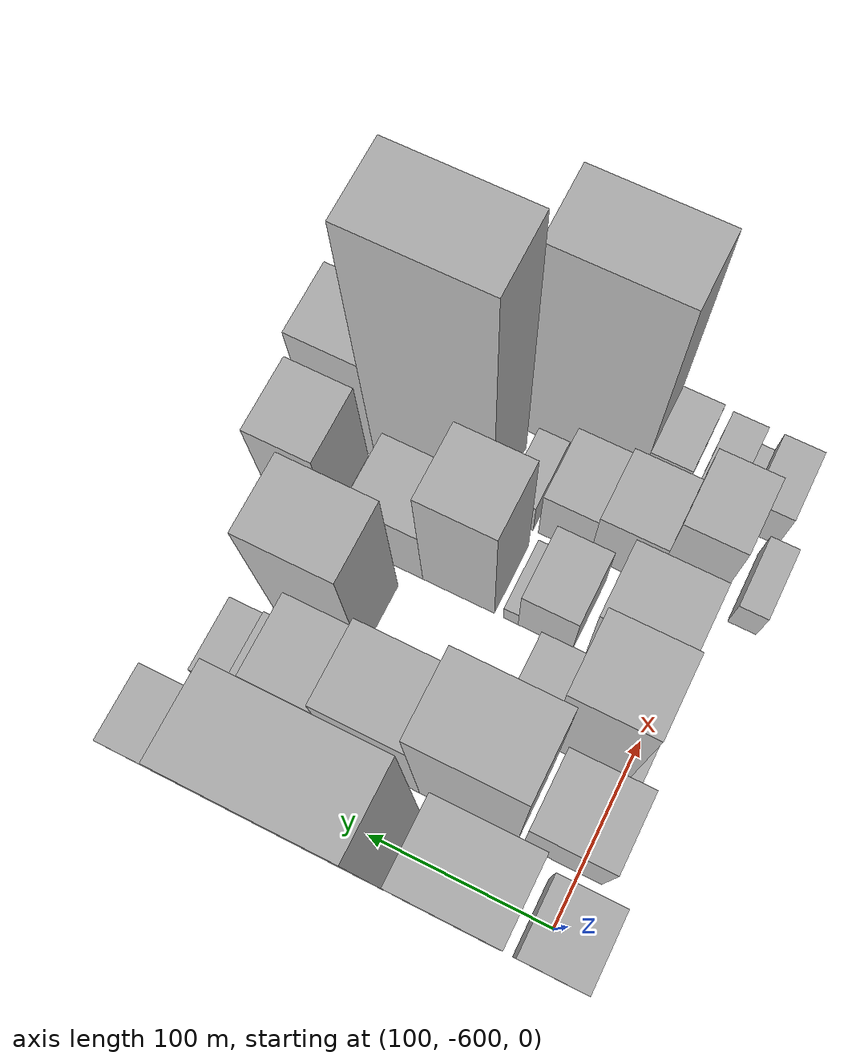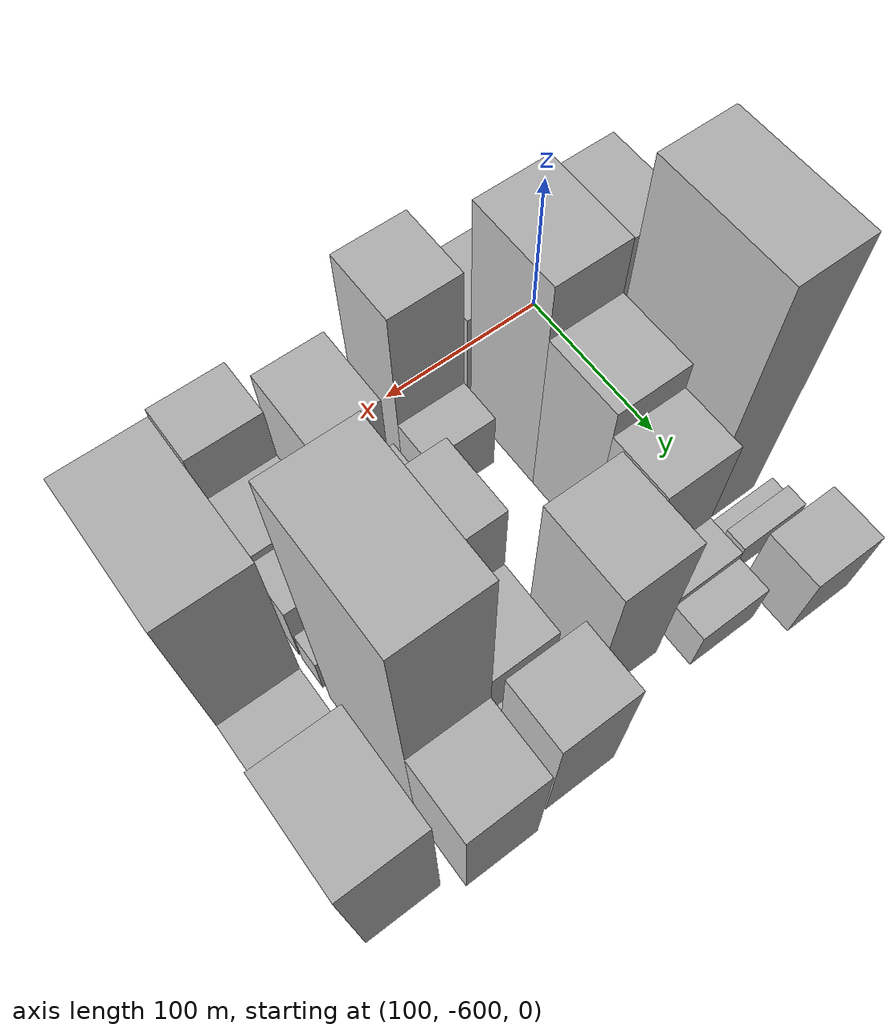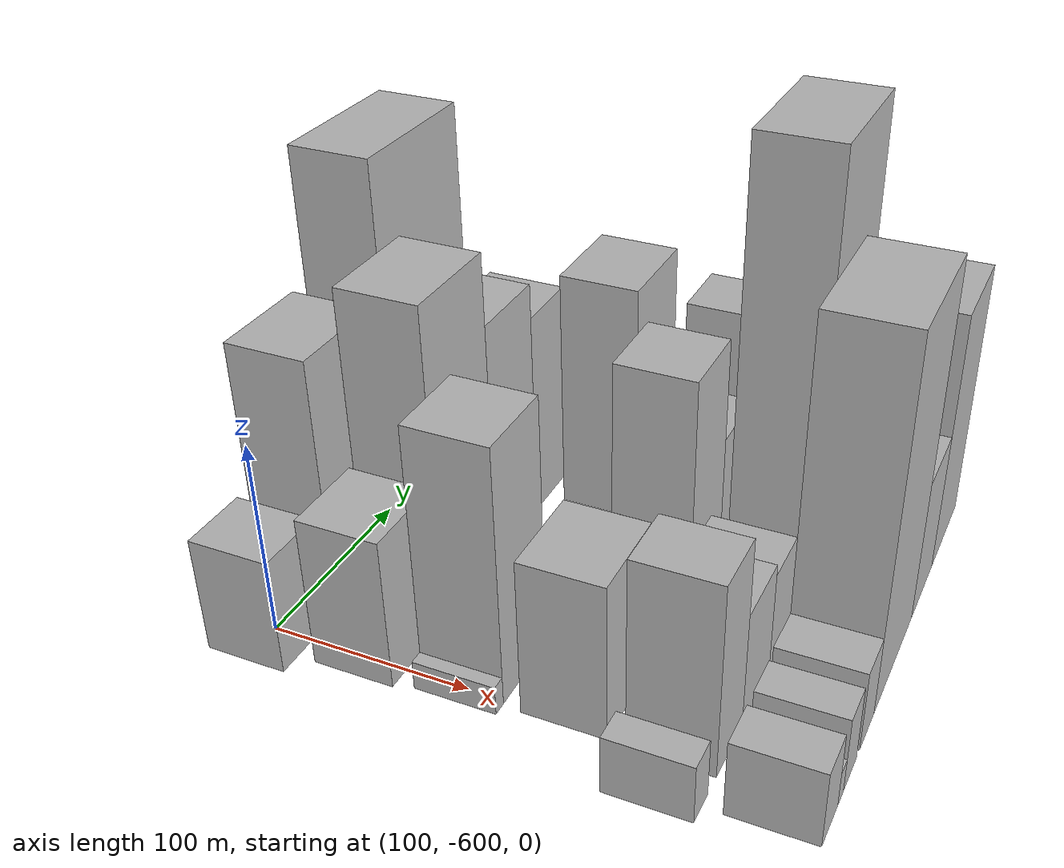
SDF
<sdf version="1.6">
 <world name="default">
  <model name="building_6">
   <static>1</static>
   <pose>100.0000 -605.4670 0 0.000000 0.000000 0.000000</pose>
   <link name="link">
    <pose>0 0 30.00 0 0 0</pose>
    <collision name="collision"><geometry><box><size>40.0000 35.0265 60.0000</size></box></geometry></collision>
    <visual name="visual">
     <cast_shadows>0</cast_shadows>
     <geometry><box><size>40.0000 35.0265 60.0000</size></box></geometry>
     <material>
      <script>
       <uri>model://HANNAS_wall/materials/scripts</uri>
       <uri>model://HANNAS_wall/materials/textures</uri>
       <name>vrc/HANNAS_wall</name>
      </script>
     </material>
    </visual>
   </link>
  </model>
  <model name="building_7">
   <static>1</static>
   <pose>100.0000 -554.4824 0 0.000000 0.000000 0.000000</pose>
   <link name="link">
    <pose>0 0 67.50 0 0 0</pose>
    <collision name="collision"><geometry><box><size>40.0000 50.9426 135.0000</size></box></geometry></collision>
    <visual name="visual">
     <cast_shadows>0</cast_shadows>
     <geometry><box><size>40.0000 50.9426 135.0000</size></box></geometry>
     <material>
      <script>
       <uri>model://HANNAS_wall/materials/scripts</uri>
       <uri>model://HANNAS_wall/materials/textures</uri>
       <name>vrc/HANNAS_wall</name>
      </script>
     </material>
    </visual>
   </link>
  </model>
  <model name="building_8">
   <static>1</static>
   <pose>100.0000 -481.4646 0 0.000000 0.000000 0.000000</pose>
   <link name="link">
    <pose>0 0 100.50 0 0 0</pose>
    <collision name="collision"><geometry><box><size>40.0000 75.0930 201.0000</size></box></geometry></collision>
    <visual name="visual">
     <cast_shadows>0</cast_shadows>
     <geometry><box><size>40.0000 75.0930 201.0000</size></box></geometry>
     <material>
      <script>
       <uri>model://HANNAS_wall/materials/scripts</uri>
       <uri>model://HANNAS_wall/materials/textures</uri>
       <name>vrc/HANNAS_wall</name>
      </script>
     </material>
    </visual>
   </link>
  </model>
  <model name="building_9">
   <static>1</static>
   <pose>100.0000 -432.3738 0 0.000000 0.000000 0.000000</pose>
   <link name="link">
    <pose>0 0 10.50 0 0 0</pose>
    <collision name="collision"><geometry><box><size>40.0000 9.0886 21.0000</size></box></geometry></collision>
    <visual name="visual">
     <cast_shadows>0</cast_shadows>
     <geometry><box><size>40.0000 9.0886 21.0000</size></box></geometry>
     <material>
      <script>
       <uri>model://HANNAS_wall/materials/scripts</uri>
       <uri>model://HANNAS_wall/materials/textures</uri>
       <name>vrc/HANNAS_wall</name>
      </script>
     </material>
    </visual>
   </link>
  </model>
  <model name="building_10">
   <static>1</static>
   <pose>100.0000 -421.5550 0 0.000000 0.000000 0.000000</pose>
   <link name="link">
    <pose>0 0 13.50 0 0 0</pose>
    <collision name="collision"><geometry><box><size>40.0000 12.5490 27.0000</size></box></geometry></collision>
    <visual name="visual">
     <cast_shadows>0</cast_shadows>
     <geometry><box><size>40.0000 12.5490 27.0000</size></box></geometry>
     <material>
      <script>
       <uri>model://HANNAS_wall/materials/scripts</uri>
       <uri>model://HANNAS_wall/materials/textures</uri>
       <name>vrc/HANNAS_wall</name>
      </script>
     </material>
    </visual>
   </link>
  </model>
  <model name="building_11">
   <static>1</static>
   <pose>100.0000 -392.2786 0 0.000000 0.000000 0.000000</pose>
   <link name="link">
    <pose>0 0 28.50 0 0 0</pose>
    <collision name="collision"><geometry><box><size>40.0000 32.0037 57.0000</size></box></geometry></collision>
    <visual name="visual">
     <cast_shadows>0</cast_shadows>
     <geometry><box><size>40.0000 32.0037 57.0000</size></box></geometry>
     <material>
      <script>
       <uri>model://HANNAS_wall/materials/scripts</uri>
       <uri>model://HANNAS_wall/materials/textures</uri>
       <name>vrc/HANNAS_wall</name>
      </script>
     </material>
    </visual>
   </link>
  </model>
  <model name="building_52">
   <static>1</static>
   <pose>149.0000 -590.7707 0 0.000000 0.000000 0.000000</pose>
   <link name="link">
    <pose>0 0 39.00 0 0 0</pose>
    <collision name="collision"><geometry><box><size>40.0000 42.2440 78.0000</size></box></geometry></collision>
    <visual name="visual">
     <cast_shadows>0</cast_shadows>
     <geometry><box><size>40.0000 42.2440 78.0000</size></box></geometry>
     <material>
      <script>
       <uri>model://HANNAS_wall/materials/scripts</uri>
       <uri>model://HANNAS_wall/materials/textures</uri>
       <name>vrc/HANNAS_wall</name>
      </script>
     </material>
    </visual>
   </link>
  </model>
  <model name="building_53">
   <static>1</static>
   <pose>149.0000 -540.1010 0 0.000000 0.000000 0.000000</pose>
   <link name="link">
    <pose>0 0 82.50 0 0 0</pose>
    <collision name="collision"><geometry><box><size>40.0000 53.0954 165.0000</size></box></geometry></collision>
    <visual name="visual">
     <cast_shadows>0</cast_shadows>
     <geometry><box><size>40.0000 53.0954 165.0000</size></box></geometry>
     <material>
      <script>
       <uri>model://HANNAS_wall/materials/scripts</uri>
       <uri>model://HANNAS_wall/materials/textures</uri>
       <name>vrc/HANNAS_wall</name>
      </script>
     </material>
    </visual>
   </link>
  </model>
  <model name="building_54">
   <static>1</static>
   <pose>149.0000 -491.4233 0 0.000000 0.000000 0.000000</pose>
   <link name="link">
    <pose>0 0 64.50 0 0 0</pose>
    <collision name="collision"><geometry><box><size>40.0000 44.2600 129.0000</size></box></geometry></collision>
    <visual name="visual">
     <cast_shadows>0</cast_shadows>
     <geometry><box><size>40.0000 44.2600 129.0000</size></box></geometry>
     <material>
      <script>
       <uri>model://HANNAS_wall/materials/scripts</uri>
       <uri>model://HANNAS_wall/materials/textures</uri>
       <name>vrc/HANNAS_wall</name>
      </script>
     </material>
    </visual>
   </link>
  </model>
  <model name="building_55">
   <static>1</static>
   <pose>149.0000 -451.5261 0 0.000000 0.000000 0.000000</pose>
   <link name="link">
    <pose>0 0 55.50 0 0 0</pose>
    <collision name="collision"><geometry><box><size>40.0000 35.5344 111.0000</size></box></geometry></collision>
    <visual name="visual">
     <cast_shadows>0</cast_shadows>
     <geometry><box><size>40.0000 35.5344 111.0000</size></box></geometry>
     <material>
      <script>
       <uri>model://HANNAS_wall/materials/scripts</uri>
       <uri>model://HANNAS_wall/materials/textures</uri>
       <name>vrc/HANNAS_wall</name>
      </script>
     </material>
    </visual>
   </link>
  </model>
  <model name="building_56">
   <static>1</static>
   <pose>149.0000 -422.6835 0 0.000000 0.000000 0.000000</pose>
   <link name="link">
    <pose>0 0 21.00 0 0 0</pose>
    <collision name="collision"><geometry><box><size>40.0000 22.1510 42.0000</size></box></geometry></collision>
    <visual name="visual">
     <cast_shadows>0</cast_shadows>
     <geometry><box><size>40.0000 22.1510 42.0000</size></box></geometry>
     <material>
      <script>
       <uri>model://HANNAS_wall/materials/scripts</uri>
       <uri>model://HANNAS_wall/materials/textures</uri>
       <name>vrc/HANNAS_wall</name>
      </script>
     </material>
    </visual>
   </link>
  </model>
  <model name="building_57">
   <static>1</static>
   <pose>149.0000 -401.6400 0 0.000000 0.000000 0.000000</pose>
   <link name="link">
    <pose>0 0 18.00 0 0 0</pose>
    <collision name="collision"><geometry><box><size>40.0000 19.9360 36.0000</size></box></geometry></collision>
    <visual name="visual">
     <cast_shadows>0</cast_shadows>
     <geometry><box><size>40.0000 19.9360 36.0000</size></box></geometry>
     <material>
      <script>
       <uri>model://HANNAS_wall/materials/scripts</uri>
       <uri>model://HANNAS_wall/materials/textures</uri>
       <name>vrc/HANNAS_wall</name>
      </script>
     </material>
    </visual>
   </link>
  </model>
  <model name="building_102">
   <static>1</static>
   <pose>198.0000 -605.2916 0 0.000000 0.000000 0.000000</pose>
   <link name="link">
    <pose>0 0 7.50 0 0 0</pose>
    <collision name="collision"><geometry><box><size>40.0000 6.8563 15.0000</size></box></geometry></collision>
    <visual name="visual">
     <cast_shadows>0</cast_shadows>
     <geometry><box><size>40.0000 6.8563 15.0000</size></box></geometry>
     <material>
      <script>
       <uri>model://HANNAS_wall/materials/scripts</uri>
       <uri>model://HANNAS_wall/materials/textures</uri>
       <name>vrc/HANNAS_wall</name>
      </script>
     </material>
    </visual>
   </link>
  </model>
  <model name="building_103">
   <static>1</static>
   <pose>198.0000 -580.9486 0 0.000000 0.000000 0.000000</pose>
   <link name="link">
    <pose>0 0 66.00 0 0 0</pose>
    <collision name="collision"><geometry><box><size>40.0000 41.8298 132.0000</size></box></geometry></collision>
    <visual name="visual">
     <cast_shadows>0</cast_shadows>
     <geometry><box><size>40.0000 41.8298 132.0000</size></box></geometry>
     <material>
      <script>
       <uri>model://HANNAS_wall/materials/scripts</uri>
       <uri>model://HANNAS_wall/materials/textures</uri>
       <name>vrc/HANNAS_wall</name>
      </script>
     </material>
    </visual>
   </link>
  </model>
  <model name="building_104">
   <static>1</static>
   <pose>198.0000 -547.4673 0 0.000000 0.000000 0.000000</pose>
   <link name="link">
    <pose>0 0 22.50 0 0 0</pose>
    <collision name="collision"><geometry><box><size>40.0000 25.1329 45.0000</size></box></geometry></collision>
    <visual name="visual">
     <cast_shadows>0</cast_shadows>
     <geometry><box><size>40.0000 25.1329 45.0000</size></box></geometry>
     <material>
      <script>
       <uri>model://HANNAS_wall/materials/scripts</uri>
       <uri>model://HANNAS_wall/materials/textures</uri>
       <name>vrc/HANNAS_wall</name>
      </script>
     </material>
    </visual>
   </link>
  </model>
  <model name="building_105">
   <static>1</static>
   <pose>198.0000 -430.9025 0 0.000000 0.000000 0.000000</pose>
   <link name="link">
    <pose>0 0 64.50 0 0 0</pose>
    <collision name="collision"><geometry><box><size>40.0000 49.3322 129.0000</size></box></geometry></collision>
    <visual name="visual">
     <cast_shadows>0</cast_shadows>
     <geometry><box><size>40.0000 49.3322 129.0000</size></box></geometry>
     <material>
      <script>
       <uri>model://HANNAS_wall/materials/scripts</uri>
       <uri>model://HANNAS_wall/materials/textures</uri>
       <name>vrc/HANNAS_wall</name>
      </script>
     </material>
    </visual>
   </link>
  </model>
  <model name="building_149">
   <static>1</static>
   <pose>247.0000 -580.2338 0 0.000000 0.000000 0.000000</pose>
   <link name="link">
    <pose>0 0 40.50 0 0 0</pose>
    <collision name="collision"><geometry><box><size>40.0000 46.2314 81.0000</size></box></geometry></collision>
    <visual name="visual">
     <cast_shadows>0</cast_shadows>
     <geometry><box><size>40.0000 46.2314 81.0000</size></box></geometry>
     <material>
      <script>
       <uri>model://HANNAS_wall/materials/scripts</uri>
       <uri>model://HANNAS_wall/materials/textures</uri>
       <name>vrc/HANNAS_wall</name>
      </script>
     </material>
    </visual>
   </link>
  </model>
  <model name="building_150">
   <static>1</static>
   <pose>247.0000 -534.8901 0 0.000000 0.000000 0.000000</pose>
   <link name="link">
    <pose>0 0 25.50 0 0 0</pose>
    <collision name="collision"><geometry><box><size>40.0000 30.4558 51.0000</size></box></geometry></collision>
    <visual name="visual">
     <cast_shadows>0</cast_shadows>
     <geometry><box><size>40.0000 30.4558 51.0000</size></box></geometry>
     <material>
      <script>
       <uri>model://HANNAS_wall/materials/scripts</uri>
       <uri>model://HANNAS_wall/materials/textures</uri>
       <name>vrc/HANNAS_wall</name>
      </script>
     </material>
    </visual>
   </link>
  </model>
  <model name="building_151">
   <static>1</static>
   <pose>247.0000 -515.4645 0 0.000000 0.000000 0.000000</pose>
   <link name="link">
    <pose>0 0 9.00 0 0 0</pose>
    <collision name="collision"><geometry><box><size>40.0000 8.3954 18.0000</size></box></geometry></collision>
    <visual name="visual">
     <cast_shadows>0</cast_shadows>
     <geometry><box><size>40.0000 8.3954 18.0000</size></box></geometry>
     <material>
      <script>
       <uri>model://HANNAS_wall/materials/scripts</uri>
       <uri>model://HANNAS_wall/materials/textures</uri>
       <name>vrc/HANNAS_wall</name>
      </script>
     </material>
    </visual>
   </link>
  </model>
  <model name="building_152">
   <static>1</static>
   <pose>247.0000 -485.7428 0 0.000000 0.000000 0.000000</pose>
   <link name="link">
    <pose>0 0 60.00 0 0 0</pose>
    <collision name="collision"><geometry><box><size>40.0000 41.0480 120.0000</size></box></geometry></collision>
    <visual name="visual">
     <cast_shadows>0</cast_shadows>
     <geometry><box><size>40.0000 41.0480 120.0000</size></box></geometry>
     <material>
      <script>
       <uri>model://HANNAS_wall/materials/scripts</uri>
       <uri>model://HANNAS_wall/materials/textures</uri>
       <name>vrc/HANNAS_wall</name>
      </script>
     </material>
    </visual>
   </link>
  </model>
  <model name="building_153">
   <static>1</static>
   <pose>247.0000 -445.6171 0 0.000000 0.000000 0.000000</pose>
   <link name="link">
    <pose>0 0 33.00 0 0 0</pose>
    <collision name="collision"><geometry><box><size>40.0000 39.2034 66.0000</size></box></geometry></collision>
    <visual name="visual">
     <cast_shadows>0</cast_shadows>
     <geometry><box><size>40.0000 39.2034 66.0000</size></box></geometry>
     <material>
      <script>
       <uri>model://HANNAS_wall/materials/scripts</uri>
       <uri>model://HANNAS_wall/materials/textures</uri>
       <name>vrc/HANNAS_wall</name>
      </script>
     </material>
    </visual>
   </link>
  </model>
  <model name="building_154">
   <static>1</static>
   <pose>247.0000 -420.3716 0 0.000000 0.000000 0.000000</pose>
   <link name="link">
    <pose>0 0 12.00 0 0 0</pose>
    <collision name="collision"><geometry><box><size>40.0000 11.2876 24.0000</size></box></geometry></collision>
    <visual name="visual">
     <cast_shadows>0</cast_shadows>
     <geometry><box><size>40.0000 11.2876 24.0000</size></box></geometry>
     <material>
      <script>
       <uri>model://HANNAS_wall/materials/scripts</uri>
       <uri>model://HANNAS_wall/materials/textures</uri>
       <name>vrc/HANNAS_wall</name>
      </script>
     </material>
    </visual>
   </link>
  </model>
  <model name="building_155">
   <static>1</static>
   <pose>247.0000 -397.0033 0 0.000000 0.000000 0.000000</pose>
   <link name="link">
    <pose>0 0 52.50 0 0 0</pose>
    <collision name="collision"><geometry><box><size>40.0000 35.4490 105.0000</size></box></geometry></collision>
    <visual name="visual">
     <cast_shadows>0</cast_shadows>
     <geometry><box><size>40.0000 35.4490 105.0000</size></box></geometry>
     <material>
      <script>
       <uri>model://HANNAS_wall/materials/scripts</uri>
       <uri>model://HANNAS_wall/materials/textures</uri>
       <name>vrc/HANNAS_wall</name>
      </script>
     </material>
    </visual>
   </link>
  </model>
  <model name="building_204">
   <static>1</static>
   <pose>296.0000 -622.5141 0 0.000000 0.000000 0.000000</pose>
   <link name="link">
    <pose>0 0 15.00 0 0 0</pose>
    <collision name="collision"><geometry><box><size>40.0000 15.7759 30.0000</size></box></geometry></collision>
    <visual name="visual">
     <cast_shadows>0</cast_shadows>
     <geometry><box><size>40.0000 15.7759 30.0000</size></box></geometry>
     <material>
      <script>
       <uri>model://HANNAS_wall/materials/scripts</uri>
       <uri>model://HANNAS_wall/materials/textures</uri>
       <name>vrc/HANNAS_wall</name>
      </script>
     </material>
    </visual>
   </link>
  </model>
  <model name="building_205">
   <static>1</static>
   <pose>296.0000 -588.7622 0 0.000000 0.000000 0.000000</pose>
   <link name="link">
    <pose>0 0 49.50 0 0 0</pose>
    <collision name="collision"><geometry><box><size>40.0000 31.7278 99.0000</size></box></geometry></collision>
    <visual name="visual">
     <cast_shadows>0</cast_shadows>
     <geometry><box><size>40.0000 31.7278 99.0000</size></box></geometry>
     <material>
      <script>
       <uri>model://HANNAS_wall/materials/scripts</uri>
       <uri>model://HANNAS_wall/materials/textures</uri>
       <name>vrc/HANNAS_wall</name>
      </script>
     </material>
    </visual>
   </link>
  </model>
  <model name="building_206">
   <static>1</static>
   <pose>296.0000 -554.9461 0 0.000000 0.000000 0.000000</pose>
   <link name="link">
    <pose>0 0 30.00 0 0 0</pose>
    <collision name="collision"><geometry><box><size>40.0000 35.9045 60.0000</size></box></geometry></collision>
    <visual name="visual">
     <cast_shadows>0</cast_shadows>
     <geometry><box><size>40.0000 35.9045 60.0000</size></box></geometry>
     <material>
      <script>
       <uri>model://HANNAS_wall/materials/scripts</uri>
       <uri>model://HANNAS_wall/materials/textures</uri>
       <name>vrc/HANNAS_wall</name>
      </script>
     </material>
    </visual>
   </link>
  </model>
  <model name="building_207">
   <static>1</static>
   <pose>296.0000 -522.3073 0 0.000000 0.000000 0.000000</pose>
   <link name="link">
    <pose>0 0 27.00 0 0 0</pose>
    <collision name="collision"><geometry><box><size>40.0000 29.3731 54.0000</size></box></geometry></collision>
    <visual name="visual">
     <cast_shadows>0</cast_shadows>
     <geometry><box><size>40.0000 29.3731 54.0000</size></box></geometry>
     <material>
      <script>
       <uri>model://HANNAS_wall/materials/scripts</uri>
       <uri>model://HANNAS_wall/materials/textures</uri>
       <name>vrc/HANNAS_wall</name>
      </script>
     </material>
    </visual>
   </link>
  </model>
  <model name="building_208">
   <static>1</static>
   <pose>296.0000 -495.9714 0 0.000000 0.000000 0.000000</pose>
   <link name="link">
    <pose>0 0 16.50 0 0 0</pose>
    <collision name="collision"><geometry><box><size>40.0000 17.2987 33.0000</size></box></geometry></collision>
    <visual name="visual">
     <cast_shadows>0</cast_shadows>
     <geometry><box><size>40.0000 17.2987 33.0000</size></box></geometry>
     <material>
      <script>
       <uri>model://HANNAS_wall/materials/scripts</uri>
       <uri>model://HANNAS_wall/materials/textures</uri>
       <name>vrc/HANNAS_wall</name>
      </script>
     </material>
    </visual>
   </link>
  </model>
  <model name="building_209">
   <static>1</static>
   <pose>296.0000 -446.6043 0 0.000000 0.000000 0.000000</pose>
   <link name="link">
    <pose>0 0 112.50 0 0 0</pose>
    <collision name="collision"><geometry><box><size>40.0000 69.4356 225.0000</size></box></geometry></collision>
    <visual name="visual">
     <cast_shadows>0</cast_shadows>
     <geometry><box><size>40.0000 69.4356 225.0000</size></box></geometry>
     <material>
      <script>
       <uri>model://HANNAS_wall/materials/scripts</uri>
       <uri>model://HANNAS_wall/materials/textures</uri>
       <name>vrc/HANNAS_wall</name>
      </script>
     </material>
    </visual>
   </link>
  </model>
  <model name="building_210">
   <static>1</static>
   <pose>296.0000 -392.9243 0 0.000000 0.000000 0.000000</pose>
   <link name="link">
    <pose>0 0 54.00 0 0 0</pose>
    <collision name="collision"><geometry><box><size>40.0000 37.9243 108.0000</size></box></geometry></collision>
    <visual name="visual">
     <cast_shadows>0</cast_shadows>
     <geometry><box><size>40.0000 37.9243 108.0000</size></box></geometry>
     <material>
      <script>
       <uri>model://HANNAS_wall/materials/scripts</uri>
       <uri>model://HANNAS_wall/materials/textures</uri>
       <name>vrc/HANNAS_wall</name>
      </script>
     </material>
    </visual>
   </link>
  </model>
  <model name="building_254">
   <static>1</static>
   <pose>345.0000 -610.6008 0 0.000000 0.000000 0.000000</pose>
   <link name="link">
    <pose>0 0 19.50 0 0 0</pose>
    <collision name="collision"><geometry><box><size>40.0000 22.2517 39.0000</size></box></geometry></collision>
    <visual name="visual">
     <cast_shadows>0</cast_shadows>
     <geometry><box><size>40.0000 22.2517 39.0000</size></box></geometry>
     <material>
      <script>
       <uri>model://HANNAS_wall/materials/scripts</uri>
       <uri>model://HANNAS_wall/materials/textures</uri>
       <name>vrc/HANNAS_wall</name>
      </script>
     </material>
    </visual>
   </link>
  </model>
  <model name="building_255">
   <static>1</static>
   <pose>345.0000 -595.3857 0 0.000000 0.000000 0.000000</pose>
   <link name="link">
    <pose>0 0 9.00 0 0 0</pose>
    <collision name="collision"><geometry><box><size>40.0000 8.1785 18.0000</size></box></geometry></collision>
    <visual name="visual">
     <cast_shadows>0</cast_shadows>
     <geometry><box><size>40.0000 8.1785 18.0000</size></box></geometry>
     <material>
      <script>
       <uri>model://HANNAS_wall/materials/scripts</uri>
       <uri>model://HANNAS_wall/materials/textures</uri>
       <name>vrc/HANNAS_wall</name>
      </script>
     </material>
    </visual>
   </link>
  </model>
  <model name="building_256">
   <static>1</static>
   <pose>345.0000 -581.5273 0 0.000000 0.000000 0.000000</pose>
   <link name="link">
    <pose>0 0 19.50 0 0 0</pose>
    <collision name="collision"><geometry><box><size>40.0000 19.5384 39.0000</size></box></geometry></collision>
    <visual name="visual">
     <cast_shadows>0</cast_shadows>
     <geometry><box><size>40.0000 19.5384 39.0000</size></box></geometry>
     <material>
      <script>
       <uri>model://HANNAS_wall/materials/scripts</uri>
       <uri>model://HANNAS_wall/materials/textures</uri>
       <name>vrc/HANNAS_wall</name>
      </script>
     </material>
    </visual>
   </link>
  </model>
  <model name="building_257">
   <static>1</static>
   <pose>345.0000 -555.2485 0 0.000000 0.000000 0.000000</pose>
   <link name="link">
    <pose>0 0 21.00 0 0 0</pose>
    <collision name="collision"><geometry><box><size>40.0000 23.0192 42.0000</size></box></geometry></collision>
    <visual name="visual">
     <cast_shadows>0</cast_shadows>
     <geometry><box><size>40.0000 23.0192 42.0000</size></box></geometry>
     <material>
      <script>
       <uri>model://HANNAS_wall/materials/scripts</uri>
       <uri>model://HANNAS_wall/materials/textures</uri>
       <name>vrc/HANNAS_wall</name>
      </script>
     </material>
    </visual>
   </link>
  </model>
  <model name="building_258">
   <static>1</static>
   <pose>345.0000 -509.7679 0 0.000000 0.000000 0.000000</pose>
   <link name="link">
    <pose>0 0 93.00 0 0 0</pose>
    <collision name="collision"><geometry><box><size>40.0000 67.9422 186.0000</size></box></geometry></collision>
    <visual name="visual">
     <cast_shadows>0</cast_shadows>
     <geometry><box><size>40.0000 67.9422 186.0000</size></box></geometry>
     <material>
      <script>
       <uri>model://HANNAS_wall/materials/scripts</uri>
       <uri>model://HANNAS_wall/materials/textures</uri>
       <name>vrc/HANNAS_wall</name>
      </script>
     </material>
    </visual>
   </link>
  </model>
  <model name="building_259">
   <static>1</static>
   <pose>345.0000 -455.1758 0 0.000000 0.000000 0.000000</pose>
   <link name="link">
    <pose>0 0 37.50 0 0 0</pose>
    <collision name="collision"><geometry><box><size>40.0000 41.2419 75.0000</size></box></geometry></collision>
    <visual name="visual">
     <cast_shadows>0</cast_shadows>
     <geometry><box><size>40.0000 41.2419 75.0000</size></box></geometry>
     <material>
      <script>
       <uri>model://HANNAS_wall/materials/scripts</uri>
       <uri>model://HANNAS_wall/materials/textures</uri>
       <name>vrc/HANNAS_wall</name>
      </script>
     </material>
    </visual>
   </link>
  </model>
  <model name="building_260">
   <static>1</static>
   <pose>345.0000 -407.7521 0 0.000000 0.000000 0.000000</pose>
   <link name="link">
    <pose>0 0 69.00 0 0 0</pose>
    <collision name="collision"><geometry><box><size>40.0000 53.6056 138.0000</size></box></geometry></collision>
    <visual name="visual">
     <cast_shadows>0</cast_shadows>
     <geometry><box><size>40.0000 53.6056 138.0000</size></box></geometry>
     <material>
      <script>
       <uri>model://HANNAS_wall/materials/scripts</uri>
       <uri>model://HANNAS_wall/materials/textures</uri>
       <name>vrc/HANNAS_wall</name>
      </script>
     </material>
    </visual>
   </link>
  </model>
 </world>
</sdf>
